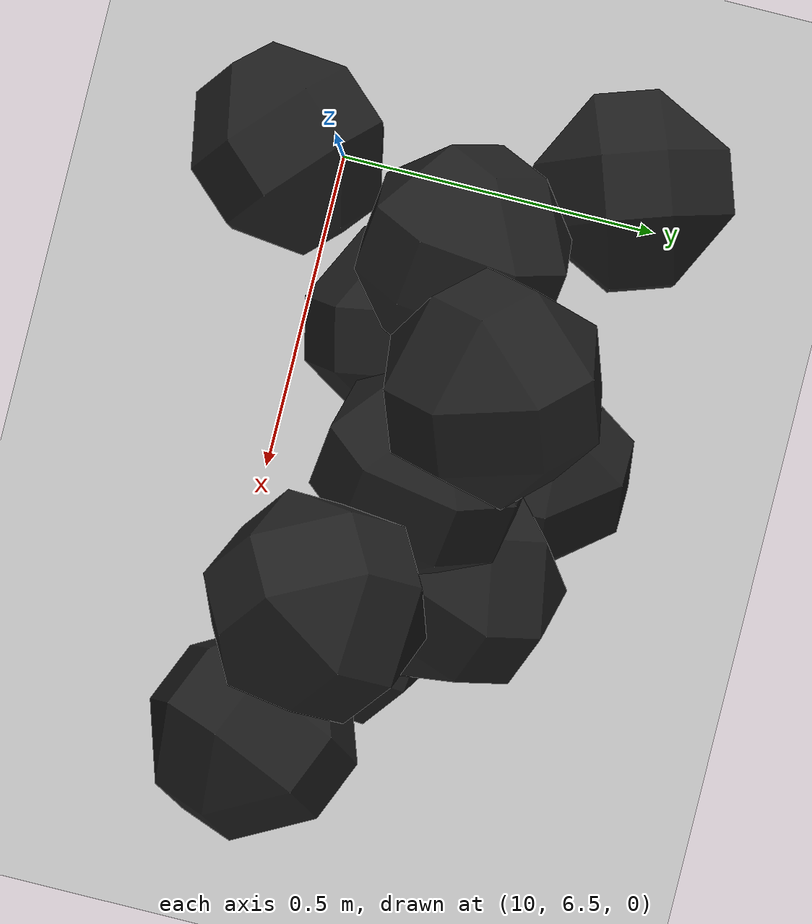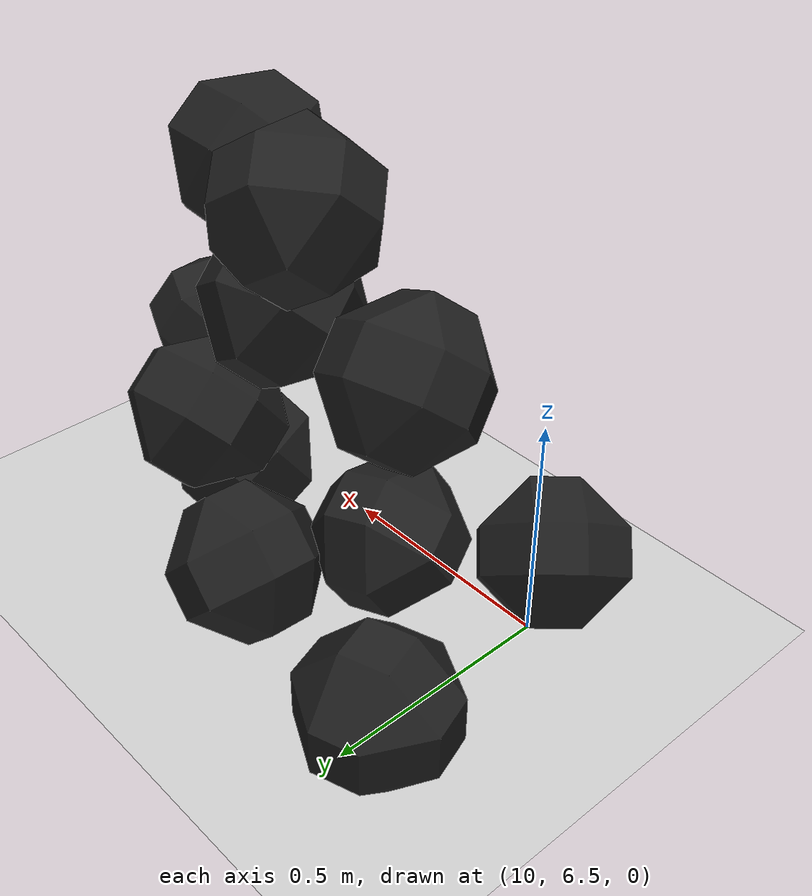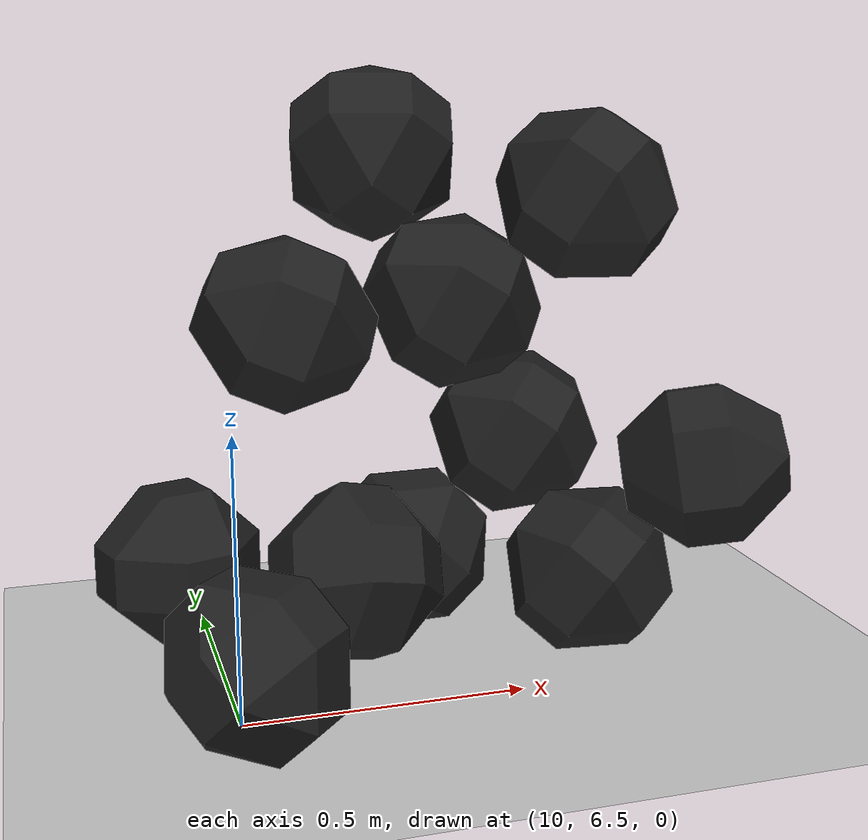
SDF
<sdf version="1.6">
 <world name="default">
  <model name="ground_plane">
   <static>1</static>
   <link name="link">
    <collision name="collision">
     <geometry><plane><normal>0 0 1</normal><size>100 100</size></plane></geometry>
     <surface><friction><ode><mu>100</mu><mu2>50</mu2></ode></friction></surface>
    </collision>
    <visual name="visual">
     <cast_shadows>0</cast_shadows>
     <geometry><plane><normal>0 0 1</normal><size>100 100</size></plane></geometry>
     <material>
      <script><uri>file://media/materials/scripts/gazebo.material</uri><name>Gazebo/Grey</name></script>
     </material>
    </visual>
   </link>
  </model>
  <model name="haoduomiantiaa_1">
   <link name="link_0">
    <inertial>
     <mass>0.2</mass>
     <inertia>
      <ixx>0.166667</ixx>
      <ixy>0</ixy>
      <ixz>0</ixz>
      <iyy>0.166667</iyy>
      <iyz>0</iyz>
      <izz>0.166667</izz>
     </inertia>
    </inertial>
    <visual name="visual">
     <geometry>
      <mesh>
       <uri>/home/oliver/catkin_ws/src/pudong_gazebo/world/stl/haoduomianti.stl</uri>
       <scale>1 1 1</scale>
      </mesh>
     </geometry>
     <material>
      <lighting>1</lighting>
      <script><uri>file://media/materials/scripts/gazebo.material</uri><name>Gazebo/Black</name></script>
      <shader type="pixel"><normal_map>__default__</normal_map></shader>
      <ambient>0.3 0.3 0.3 1</ambient>
      <diffuse>0.7 0.7 0.7 1</diffuse>
      <specular>0.01 0.01 0.01 1</specular>
      <emissive>0 0 0 1</emissive>
     </material>
    </visual>
    <collision name="collision">
     <geometry>
      <mesh>
       <uri>/home/oliver/catkin_ws/src/pudong_gazebo/world/stl/haoduomianti.stl</uri>
       <scale>1 1 1</scale>
      </mesh>
     </geometry>
     <surface>
      <friction>
       <ode><mu>1</mu><mu2>1</mu2><fdir1>0 0 0</fdir1><slip1>0</slip1><slip2>0</slip2></ode>
       <torsional>
        <coefficient>1</coefficient>
        <patch_radius>0</patch_radius>
        <surface_radius>0</surface_radius>
        <use_patch_radius>1</use_patch_radius>
        <ode><slip>0</slip></ode>
       </torsional>
      </friction>
      <bounce><restitution_coefficient>0</restitution_coefficient><threshold>1e+06</threshold></bounce>
      <contact>
       <collide_without_contact>0</collide_without_contact>
       <collide_without_contact_bitmask>1</collide_without_contact_bitmask>
       <collide_bitmask>1</collide_bitmask>
       <ode>
        <soft_cfm>0</soft_cfm>
        <soft_erp>0.2</soft_erp>
        <kp>1e+13</kp>
        <kd>1</kd>
        <max_vel>0.01</max_vel>
        <min_depth>0</min_depth>
       </ode>
       <bullet>
        <split_impulse>1</split_impulse>
        <split_impulse_penetration_threshold>-0.01</split_impulse_penetration_threshold>
        <soft_cfm>0</soft_cfm>
        <soft_erp>0.2</soft_erp>
        <kp>1e+13</kp>
        <kd>1</kd>
       </bullet>
      </contact>
     </surface>
    </collision>
   </link>
   <static>0</static>
   <pose>10.6958 6.67927 -0.115575 0.783813 -0.615096 0.41148</pose>
  </model>
  <model name="haoduomiantiaa_13">
   <link name="link_0">
    <inertial>
     <mass>0.2</mass>
     <inertia>
      <ixx>0.166667</ixx>
      <ixy>0</ixy>
      <ixz>0</ixz>
      <iyy>0.166667</iyy>
      <iyz>0</iyz>
      <izz>0.166667</izz>
     </inertia>
    </inertial>
    <visual name="visual">
     <geometry>
      <mesh>
       <uri>/home/oliver/catkin_ws/src/pudong_gazebo/world/stl/haoduomianti.stl</uri>
       <scale>1 1 1</scale>
      </mesh>
     </geometry>
     <material>
      <lighting>1</lighting>
      <script><uri>file://media/materials/scripts/gazebo.material</uri><name>Gazebo/Black</name></script>
      <shader type="pixel"><normal_map>__default__</normal_map></shader>
      <ambient>0.3 0.3 0.3 1</ambient>
      <diffuse>0.7 0.7 0.7 1</diffuse>
      <specular>0.01 0.01 0.01 1</specular>
      <emissive>0 0 0 1</emissive>
     </material>
    </visual>
    <collision name="collision">
     <geometry>
      <mesh>
       <uri>/home/oliver/catkin_ws/src/pudong_gazebo/world/stl/haoduomianti.stl</uri>
       <scale>1 1 1</scale>
      </mesh>
     </geometry>
     <surface>
      <friction>
       <ode><mu>1</mu><mu2>1</mu2><fdir1>0 0 0</fdir1><slip1>0</slip1><slip2>0</slip2></ode>
       <torsional>
        <coefficient>1</coefficient>
        <patch_radius>0</patch_radius>
        <surface_radius>0</surface_radius>
        <use_patch_radius>1</use_patch_radius>
        <ode><slip>0</slip></ode>
       </torsional>
      </friction>
      <bounce><restitution_coefficient>0</restitution_coefficient><threshold>1e+06</threshold></bounce>
      <contact>
       <collide_without_contact>0</collide_without_contact>
       <collide_without_contact_bitmask>1</collide_without_contact_bitmask>
       <collide_bitmask>1</collide_bitmask>
       <ode>
        <soft_cfm>0</soft_cfm>
        <soft_erp>0.2</soft_erp>
        <kp>1e+13</kp>
        <kd>1</kd>
        <max_vel>0.01</max_vel>
        <min_depth>0</min_depth>
       </ode>
       <bullet>
        <split_impulse>1</split_impulse>
        <split_impulse_penetration_threshold>-0.01</split_impulse_penetration_threshold>
        <soft_cfm>0</soft_cfm>
        <soft_erp>0.2</soft_erp>
        <kp>1e+13</kp>
        <kd>1</kd>
       </bullet>
      </contact>
     </surface>
    </collision>
   </link>
   <static>0</static>
   <pose>10.4095 6.7707 -0.082955 1.4242 -0.779534 -2.99202</pose>
  </model>
  <model name="haoduomiantiaa_15">
   <link name="link_0">
    <inertial>
     <mass>0.2</mass>
     <inertia>
      <ixx>0.166667</ixx>
      <ixy>0</ixy>
      <ixz>0</ixz>
      <iyy>0.166667</iyy>
      <iyz>0</iyz>
      <izz>0.166667</izz>
     </inertia>
    </inertial>
    <visual name="visual">
     <geometry>
      <mesh>
       <uri>/home/oliver/catkin_ws/src/pudong_gazebo/world/stl/haoduomianti.stl</uri>
       <scale>1 1 1</scale>
      </mesh>
     </geometry>
     <material>
      <lighting>1</lighting>
      <script><uri>file://media/materials/scripts/gazebo.material</uri><name>Gazebo/Black</name></script>
      <shader type="pixel"><normal_map>__default__</normal_map></shader>
      <ambient>0.3 0.3 0.3 1</ambient>
      <diffuse>0.7 0.7 0.7 1</diffuse>
      <specular>0.01 0.01 0.01 1</specular>
      <emissive>0 0 0 1</emissive>
     </material>
    </visual>
    <collision name="collision">
     <geometry>
      <mesh>
       <uri>/home/oliver/catkin_ws/src/pudong_gazebo/world/stl/haoduomianti.stl</uri>
       <scale>1 1 1</scale>
      </mesh>
     </geometry>
     <surface>
      <friction>
       <ode><mu>1</mu><mu2>1</mu2><fdir1>0 0 0</fdir1><slip1>0</slip1><slip2>0</slip2></ode>
       <torsional>
        <coefficient>1</coefficient>
        <patch_radius>0</patch_radius>
        <surface_radius>0</surface_radius>
        <use_patch_radius>1</use_patch_radius>
        <ode><slip>0</slip></ode>
       </torsional>
      </friction>
      <bounce><restitution_coefficient>0</restitution_coefficient><threshold>1e+06</threshold></bounce>
      <contact>
       <collide_without_contact>0</collide_without_contact>
       <collide_without_contact_bitmask>1</collide_without_contact_bitmask>
       <collide_bitmask>1</collide_bitmask>
       <ode>
        <soft_cfm>0</soft_cfm>
        <soft_erp>0.2</soft_erp>
        <kp>1e+13</kp>
        <kd>1</kd>
        <max_vel>0.01</max_vel>
        <min_depth>0</min_depth>
       </ode>
       <bullet>
        <split_impulse>1</split_impulse>
        <split_impulse_penetration_threshold>-0.01</split_impulse_penetration_threshold>
        <soft_cfm>0</soft_cfm>
        <soft_erp>0.2</soft_erp>
        <kp>1e+13</kp>
        <kd>1</kd>
       </bullet>
      </contact>
     </surface>
    </collision>
   </link>
   <static>0</static>
   <pose>10.6002 6.82414 0.124947 0.744025 -0.60778 0.724448</pose>
  </model>
  <model name="haoduomiantiaa_33">
   <link name="link_0">
    <inertial>
     <mass>0.2</mass>
     <inertia>
      <ixx>0.166667</ixx>
      <ixy>0</ixy>
      <ixz>0</ixz>
      <iyy>0.166667</iyy>
      <iyz>0</iyz>
      <izz>0.166667</izz>
     </inertia>
    </inertial>
    <visual name="visual">
     <geometry>
      <mesh>
       <uri>/home/oliver/catkin_ws/src/pudong_gazebo/world/stl/haoduomianti.stl</uri>
       <scale>1 1 1</scale>
      </mesh>
     </geometry>
     <material>
      <lighting>1</lighting>
      <script><uri>file://media/materials/scripts/gazebo.material</uri><name>Gazebo/Black</name></script>
      <shader type="pixel"><normal_map>__default__</normal_map></shader>
      <ambient>0.3 0.3 0.3 1</ambient>
      <diffuse>0.7 0.7 0.7 1</diffuse>
      <specular>0.01 0.01 0.01 1</specular>
      <emissive>0 0 0 1</emissive>
     </material>
    </visual>
    <collision name="collision">
     <geometry>
      <mesh>
       <uri>/home/oliver/catkin_ws/src/pudong_gazebo/world/stl/haoduomianti.stl</uri>
       <scale>1 1 1</scale>
      </mesh>
     </geometry>
     <surface>
      <friction>
       <ode><mu>1</mu><mu2>1</mu2><fdir1>0 0 0</fdir1><slip1>0</slip1><slip2>0</slip2></ode>
       <torsional>
        <coefficient>1</coefficient>
        <patch_radius>0</patch_radius>
        <surface_radius>0</surface_radius>
        <use_patch_radius>1</use_patch_radius>
        <ode><slip>0</slip></ode>
       </torsional>
      </friction>
      <bounce><restitution_coefficient>0</restitution_coefficient><threshold>1e+06</threshold></bounce>
      <contact>
       <collide_without_contact>0</collide_without_contact>
       <collide_without_contact_bitmask>1</collide_without_contact_bitmask>
       <collide_bitmask>1</collide_bitmask>
       <ode>
        <soft_cfm>0</soft_cfm>
        <soft_erp>0.2</soft_erp>
        <kp>1e+13</kp>
        <kd>1</kd>
        <max_vel>0.01</max_vel>
        <min_depth>0</min_depth>
       </ode>
       <bullet>
        <split_impulse>1</split_impulse>
        <split_impulse_penetration_threshold>-0.01</split_impulse_penetration_threshold>
        <soft_cfm>0</soft_cfm>
        <soft_erp>0.2</soft_erp>
        <kp>1e+13</kp>
        <kd>1</kd>
       </bullet>
      </contact>
     </surface>
    </collision>
   </link>
   <static>0</static>
   <pose>10.3242 6.74468 -0.042558 0.439983 -1.02494 1.41592</pose>
  </model>
  <model name="haoduomiantiaa_35">
   <link name="link_0">
    <inertial>
     <mass>0.2</mass>
     <inertia>
      <ixx>0.166667</ixx>
      <ixy>0</ixy>
      <ixz>0</ixz>
      <iyy>0.166667</iyy>
      <iyz>0</iyz>
      <izz>0.166667</izz>
     </inertia>
    </inertial>
    <visual name="visual">
     <geometry>
      <mesh>
       <uri>/home/oliver/catkin_ws/src/pudong_gazebo/world/stl/haoduomianti.stl</uri>
       <scale>1 1 1</scale>
      </mesh>
     </geometry>
     <material>
      <lighting>1</lighting>
      <script><uri>file://media/materials/scripts/gazebo.material</uri><name>Gazebo/Black</name></script>
      <shader type="pixel"><normal_map>__default__</normal_map></shader>
      <ambient>0.3 0.3 0.3 1</ambient>
      <diffuse>0.7 0.7 0.7 1</diffuse>
      <specular>0.01 0.01 0.01 1</specular>
      <emissive>0 0 0 1</emissive>
     </material>
    </visual>
    <collision name="collision">
     <geometry>
      <mesh>
       <uri>/home/oliver/catkin_ws/src/pudong_gazebo/world/stl/haoduomianti.stl</uri>
       <scale>1 1 1</scale>
      </mesh>
     </geometry>
     <surface>
      <friction>
       <ode><mu>1</mu><mu2>1</mu2><fdir1>0 0 0</fdir1><slip1>0</slip1><slip2>0</slip2></ode>
       <torsional>
        <coefficient>1</coefficient>
        <patch_radius>0</patch_radius>
        <surface_radius>0</surface_radius>
        <use_patch_radius>1</use_patch_radius>
        <ode><slip>0</slip></ode>
       </torsional>
      </friction>
      <bounce><restitution_coefficient>0</restitution_coefficient><threshold>1e+06</threshold></bounce>
      <contact>
       <collide_without_contact>0</collide_without_contact>
       <collide_without_contact_bitmask>1</collide_without_contact_bitmask>
       <collide_bitmask>1</collide_bitmask>
       <ode>
        <soft_cfm>0</soft_cfm>
        <soft_erp>0.2</soft_erp>
        <kp>1e+13</kp>
        <kd>1</kd>
        <max_vel>0.01</max_vel>
        <min_depth>0</min_depth>
       </ode>
       <bullet>
        <split_impulse>1</split_impulse>
        <split_impulse_penetration_threshold>-0.01</split_impulse_penetration_threshold>
        <soft_cfm>0</soft_cfm>
        <soft_erp>0.2</soft_erp>
        <kp>1e+13</kp>
        <kd>1</kd>
       </bullet>
      </contact>
     </surface>
    </collision>
   </link>
   <static>0</static>
   <pose>10.1431 6.85406 -0.011629 -1.8008 -1.56758 2.12243</pose>
  </model>
  <model name="haoduomiantiaa_52">
   <link name="link_0">
    <inertial>
     <mass>0.2</mass>
     <inertia>
      <ixx>0.166667</ixx>
      <ixy>0</ixy>
      <ixz>0</ixz>
      <iyy>0.166667</iyy>
      <iyz>0</iyz>
      <izz>0.166667</izz>
     </inertia>
    </inertial>
    <visual name="visual">
     <geometry>
      <mesh>
       <uri>/home/oliver/catkin_ws/src/pudong_gazebo/world/stl/haoduomianti.stl</uri>
       <scale>1 1 1</scale>
      </mesh>
     </geometry>
     <material>
      <lighting>1</lighting>
      <script><uri>file://media/materials/scripts/gazebo.material</uri><name>Gazebo/Black</name></script>
      <shader type="pixel"><normal_map>__default__</normal_map></shader>
      <ambient>0.3 0.3 0.3 1</ambient>
      <diffuse>0.7 0.7 0.7 1</diffuse>
      <specular>0.01 0.01 0.01 1</specular>
      <emissive>0 0 0 1</emissive>
     </material>
    </visual>
    <collision name="collision">
     <geometry>
      <mesh>
       <uri>/home/oliver/catkin_ws/src/pudong_gazebo/world/stl/haoduomianti.stl</uri>
       <scale>1 1 1</scale>
      </mesh>
     </geometry>
     <surface>
      <friction>
       <ode><mu>1</mu><mu2>1</mu2><fdir1>0 0 0</fdir1><slip1>0</slip1><slip2>0</slip2></ode>
       <torsional>
        <coefficient>1</coefficient>
        <patch_radius>0</patch_radius>
        <surface_radius>0</surface_radius>
        <use_patch_radius>1</use_patch_radius>
        <ode><slip>0</slip></ode>
       </torsional>
      </friction>
      <bounce><restitution_coefficient>0</restitution_coefficient><threshold>1e+06</threshold></bounce>
      <contact>
       <collide_without_contact>0</collide_without_contact>
       <collide_without_contact_bitmask>1</collide_without_contact_bitmask>
       <collide_bitmask>1</collide_bitmask>
       <ode>
        <soft_cfm>0</soft_cfm>
        <soft_erp>0.2</soft_erp>
        <kp>1e+13</kp>
        <kd>1</kd>
        <max_vel>0.01</max_vel>
        <min_depth>0</min_depth>
       </ode>
       <bullet>
        <split_impulse>1</split_impulse>
        <split_impulse_penetration_threshold>-0.01</split_impulse_penetration_threshold>
        <soft_cfm>0</soft_cfm>
        <soft_erp>0.2</soft_erp>
        <kp>1e+13</kp>
        <kd>1</kd>
       </bullet>
      </contact>
     </surface>
    </collision>
   </link>
   <static>0</static>
   <pose>10.1188 6.53031 -0.070718 -8.8e-05 -0.785372 2.39603</pose>
  </model>
  <model name="haoduomiantiaa_85">
   <link name="link_0">
    <inertial>
     <mass>0.2</mass>
     <inertia>
      <ixx>0.166667</ixx>
      <ixy>0</ixy>
      <ixz>0</ixz>
      <iyy>0.166667</iyy>
      <iyz>0</iyz>
      <izz>0.166667</izz>
     </inertia>
    </inertial>
    <visual name="visual">
     <geometry>
      <mesh>
       <uri>/home/oliver/catkin_ws/src/pudong_gazebo/world/stl/haoduomianti.stl</uri>
       <scale>1 1 1</scale>
      </mesh>
     </geometry>
     <material>
      <lighting>1</lighting>
      <script><uri>file://media/materials/scripts/gazebo.material</uri><name>Gazebo/Black</name></script>
      <shader type="pixel"><normal_map>__default__</normal_map></shader>
      <ambient>0.3 0.3 0.3 1</ambient>
      <diffuse>0.7 0.7 0.7 1</diffuse>
      <specular>0.01 0.01 0.01 1</specular>
      <emissive>0 0 0 1</emissive>
     </material>
    </visual>
    <collision name="collision">
     <geometry>
      <mesh>
       <uri>/home/oliver/catkin_ws/src/pudong_gazebo/world/stl/haoduomianti.stl</uri>
       <scale>1 1 1</scale>
      </mesh>
     </geometry>
     <surface>
      <friction>
       <ode><mu>1</mu><mu2>1</mu2><fdir1>0 0 0</fdir1><slip1>0</slip1><slip2>0</slip2></ode>
       <torsional>
        <coefficient>1</coefficient>
        <patch_radius>0</patch_radius>
        <surface_radius>0</surface_radius>
        <use_patch_radius>1</use_patch_radius>
        <ode><slip>0</slip></ode>
       </torsional>
      </friction>
      <bounce><restitution_coefficient>0</restitution_coefficient><threshold>1e+06</threshold></bounce>
      <contact>
       <collide_without_contact>0</collide_without_contact>
       <collide_without_contact_bitmask>1</collide_without_contact_bitmask>
       <collide_bitmask>1</collide_bitmask>
       <ode>
        <soft_cfm>0</soft_cfm>
        <soft_erp>0.2</soft_erp>
        <kp>1e+13</kp>
        <kd>1</kd>
        <max_vel>0.01</max_vel>
        <min_depth>0</min_depth>
       </ode>
       <bullet>
        <split_impulse>1</split_impulse>
        <split_impulse_penetration_threshold>-0.01</split_impulse_penetration_threshold>
        <soft_cfm>0</soft_cfm>
        <soft_erp>0.2</soft_erp>
        <kp>1e+13</kp>
        <kd>1</kd>
       </bullet>
      </contact>
     </surface>
    </collision>
   </link>
   <static>0</static>
   <pose>10.7613 6.59624 0.128987 0.59003 -0.163783 -0.401484</pose>
  </model>
  <model name="haoduomiantiaa_116">
   <link name="link_0">
    <inertial>
     <mass>0.2</mass>
     <inertia>
      <ixx>0.166667</ixx>
      <ixy>0</ixy>
      <ixz>0</ixz>
      <iyy>0.166667</iyy>
      <iyz>0</iyz>
      <izz>0.166667</izz>
     </inertia>
    </inertial>
    <visual name="visual">
     <geometry>
      <mesh>
       <uri>/home/oliver/catkin_ws/src/pudong_gazebo/world/stl/haoduomianti.stl</uri>
       <scale>1 1 1</scale>
      </mesh>
     </geometry>
     <material>
      <lighting>1</lighting>
      <script><uri>file://media/materials/scripts/gazebo.material</uri><name>Gazebo/Black</name></script>
      <shader type="pixel"><normal_map>__default__</normal_map></shader>
      <ambient>0.3 0.3 0.3 1</ambient>
      <diffuse>0.7 0.7 0.7 1</diffuse>
      <specular>0.01 0.01 0.01 1</specular>
      <emissive>0 0 0 1</emissive>
     </material>
    </visual>
    <collision name="collision">
     <geometry>
      <mesh>
       <uri>/home/oliver/catkin_ws/src/pudong_gazebo/world/stl/haoduomianti.stl</uri>
       <scale>1 1 1</scale>
      </mesh>
     </geometry>
     <surface>
      <friction>
       <ode><mu>1</mu><mu2>1</mu2><fdir1>0 0 0</fdir1><slip1>0</slip1><slip2>0</slip2></ode>
       <torsional>
        <coefficient>1</coefficient>
        <patch_radius>0</patch_radius>
        <surface_radius>0</surface_radius>
        <use_patch_radius>1</use_patch_radius>
        <ode><slip>0</slip></ode>
       </torsional>
      </friction>
      <bounce><restitution_coefficient>0</restitution_coefficient><threshold>1e+06</threshold></bounce>
      <contact>
       <collide_without_contact>0</collide_without_contact>
       <collide_without_contact_bitmask>1</collide_without_contact_bitmask>
       <collide_bitmask>1</collide_bitmask>
       <ode>
        <soft_cfm>0</soft_cfm>
        <soft_erp>0.2</soft_erp>
        <kp>1e+13</kp>
        <kd>1</kd>
        <max_vel>0.01</max_vel>
        <min_depth>0</min_depth>
       </ode>
       <bullet>
        <split_impulse>1</split_impulse>
        <split_impulse_penetration_threshold>-0.01</split_impulse_penetration_threshold>
        <soft_cfm>0</soft_cfm>
        <soft_erp>0.2</soft_erp>
        <kp>1e+13</kp>
        <kd>1</kd>
       </bullet>
      </contact>
     </surface>
    </collision>
   </link>
   <static>0</static>
   <pose>10.182 6.70249 0.384543 0.987617 -0.764182 -1.27237</pose>
  </model>
  <model name="haoduomiantiaa_125">
   <link name="link_0">
    <inertial>
     <mass>0.2</mass>
     <inertia>
      <ixx>0.166667</ixx>
      <ixy>0</ixy>
      <ixz>0</ixz>
      <iyy>0.166667</iyy>
      <iyz>0</iyz>
      <izz>0.166667</izz>
     </inertia>
    </inertial>
    <visual name="visual">
     <geometry>
      <mesh>
       <uri>/home/oliver/catkin_ws/src/pudong_gazebo/world/stl/haoduomianti.stl</uri>
       <scale>1 1 1</scale>
      </mesh>
     </geometry>
     <material>
      <lighting>1</lighting>
      <script><uri>file://media/materials/scripts/gazebo.material</uri><name>Gazebo/Black</name></script>
      <shader type="pixel"><normal_map>__default__</normal_map></shader>
      <ambient>0.3 0.3 0.3 1</ambient>
      <diffuse>0.7 0.7 0.7 1</diffuse>
      <specular>0.01 0.01 0.01 1</specular>
      <emissive>0 0 0 1</emissive>
     </material>
    </visual>
    <collision name="collision">
     <geometry>
      <mesh>
       <uri>/home/oliver/catkin_ws/src/pudong_gazebo/world/stl/haoduomianti.stl</uri>
       <scale>1 1 1</scale>
      </mesh>
     </geometry>
     <surface>
      <friction>
       <ode><mu>1</mu><mu2>1</mu2><fdir1>0 0 0</fdir1><slip1>0</slip1><slip2>0</slip2></ode>
       <torsional>
        <coefficient>1</coefficient>
        <patch_radius>0</patch_radius>
        <surface_radius>0</surface_radius>
        <use_patch_radius>1</use_patch_radius>
        <ode><slip>0</slip></ode>
       </torsional>
      </friction>
      <bounce><restitution_coefficient>0</restitution_coefficient><threshold>1e+06</threshold></bounce>
      <contact>
       <collide_without_contact>0</collide_without_contact>
       <collide_without_contact_bitmask>1</collide_without_contact_bitmask>
       <collide_bitmask>1</collide_bitmask>
       <ode>
        <soft_cfm>0</soft_cfm>
        <soft_erp>0.2</soft_erp>
        <kp>1e+13</kp>
        <kd>1</kd>
        <max_vel>0.01</max_vel>
        <min_depth>0</min_depth>
       </ode>
       <bullet>
        <split_impulse>1</split_impulse>
        <split_impulse_penetration_threshold>-0.01</split_impulse_penetration_threshold>
        <soft_cfm>0</soft_cfm>
        <soft_erp>0.2</soft_erp>
        <kp>1e+13</kp>
        <kd>1</kd>
       </bullet>
      </contact>
     </surface>
    </collision>
   </link>
   <static>0</static>
   <pose>10.4606 6.75231 0.403213 0.745803 -0.683602 0.903518</pose>
  </model>
  <model name="haoduomiantiaa_157">
   <link name="link_0">
    <inertial>
     <mass>0.2</mass>
     <inertia>
      <ixx>0.166667</ixx>
      <ixy>0</ixy>
      <ixz>0</ixz>
      <iyy>0.166667</iyy>
      <iyz>0</iyz>
      <izz>0.166667</izz>
     </inertia>
    </inertial>
    <visual name="visual">
     <geometry>
      <mesh>
       <uri>/home/oliver/catkin_ws/src/pudong_gazebo/world/stl/haoduomianti.stl</uri>
       <scale>1 1 1</scale>
      </mesh>
     </geometry>
     <material>
      <lighting>1</lighting>
      <script><uri>file://media/materials/scripts/gazebo.material</uri><name>Gazebo/Black</name></script>
      <shader type="pixel"><normal_map>__default__</normal_map></shader>
      <ambient>0.3 0.3 0.3 1</ambient>
      <diffuse>0.7 0.7 0.7 1</diffuse>
      <specular>0.01 0.01 0.01 1</specular>
      <emissive>0 0 0 1</emissive>
     </material>
    </visual>
    <collision name="collision">
     <geometry>
      <mesh>
       <uri>/home/oliver/catkin_ws/src/pudong_gazebo/world/stl/haoduomianti.stl</uri>
       <scale>1 1 1</scale>
      </mesh>
     </geometry>
     <surface>
      <friction>
       <ode><mu>1</mu><mu2>1</mu2><fdir1>0 0 0</fdir1><slip1>0</slip1><slip2>0</slip2></ode>
       <torsional>
        <coefficient>1</coefficient>
        <patch_radius>0</patch_radius>
        <surface_radius>0</surface_radius>
        <use_patch_radius>1</use_patch_radius>
        <ode><slip>0</slip></ode>
       </torsional>
      </friction>
      <bounce><restitution_coefficient>0</restitution_coefficient><threshold>1e+06</threshold></bounce>
      <contact>
       <collide_without_contact>0</collide_without_contact>
       <collide_without_contact_bitmask>1</collide_without_contact_bitmask>
       <collide_bitmask>1</collide_bitmask>
       <ode>
        <soft_cfm>0</soft_cfm>
        <soft_erp>0.2</soft_erp>
        <kp>1e+13</kp>
        <kd>1</kd>
        <max_vel>0.01</max_vel>
        <min_depth>0</min_depth>
       </ode>
       <bullet>
        <split_impulse>1</split_impulse>
        <split_impulse_penetration_threshold>-0.01</split_impulse_penetration_threshold>
        <soft_cfm>0</soft_cfm>
        <soft_erp>0.2</soft_erp>
        <kp>1e+13</kp>
        <kd>1</kd>
       </bullet>
      </contact>
     </surface>
    </collision>
   </link>
   <static>0</static>
   <pose>10.3169 6.83792 0.666844 0.89947 -0.554291 -0.825742</pose>
  </model>
  <model name="haoduomiantiaa_169">
   <link name="link_0">
    <inertial>
     <mass>0.2</mass>
     <inertia>
      <ixx>0.166667</ixx>
      <ixy>0</ixy>
      <ixz>0</ixz>
      <iyy>0.166667</iyy>
      <iyz>0</iyz>
      <izz>0.166667</izz>
     </inertia>
    </inertial>
    <visual name="visual">
     <geometry>
      <mesh>
       <uri>/home/oliver/catkin_ws/src/pudong_gazebo/world/stl/haoduomianti.stl</uri>
       <scale>1 1 1</scale>
      </mesh>
     </geometry>
     <material>
      <lighting>1</lighting>
      <script><uri>file://media/materials/scripts/gazebo.material</uri><name>Gazebo/Black</name></script>
      <shader type="pixel"><normal_map>__default__</normal_map></shader>
      <ambient>0.3 0.3 0.3 1</ambient>
      <diffuse>0.7 0.7 0.7 1</diffuse>
      <specular>0.01 0.01 0.01 1</specular>
      <emissive>0 0 0 1</emissive>
     </material>
    </visual>
    <collision name="collision">
     <geometry>
      <mesh>
       <uri>/home/oliver/catkin_ws/src/pudong_gazebo/world/stl/haoduomianti.stl</uri>
       <scale>1 1 1</scale>
      </mesh>
     </geometry>
     <surface>
      <friction>
       <ode><mu>1</mu><mu2>1</mu2><fdir1>0 0 0</fdir1><slip1>0</slip1><slip2>0</slip2></ode>
       <torsional>
        <coefficient>1</coefficient>
        <patch_radius>0</patch_radius>
        <surface_radius>0</surface_radius>
        <use_patch_radius>1</use_patch_radius>
        <ode><slip>0</slip></ode>
       </torsional>
      </friction>
      <bounce><restitution_coefficient>0</restitution_coefficient><threshold>1e+06</threshold></bounce>
      <contact>
       <collide_without_contact>0</collide_without_contact>
       <collide_without_contact_bitmask>1</collide_without_contact_bitmask>
       <collide_bitmask>1</collide_bitmask>
       <ode>
        <soft_cfm>0</soft_cfm>
        <soft_erp>0.2</soft_erp>
        <kp>1e+13</kp>
        <kd>1</kd>
        <max_vel>0.01</max_vel>
        <min_depth>0</min_depth>
       </ode>
       <bullet>
        <split_impulse>1</split_impulse>
        <split_impulse_penetration_threshold>-0.01</split_impulse_penetration_threshold>
        <soft_cfm>0</soft_cfm>
        <soft_erp>0.2</soft_erp>
        <kp>1e+13</kp>
        <kd>1</kd>
       </bullet>
      </contact>
     </surface>
    </collision>
   </link>
   <static>0</static>
   <pose>10.6515 6.61451 0.59682 0.67711 -0.539298 0.524046</pose>
  </model>
 </world>
</sdf>
